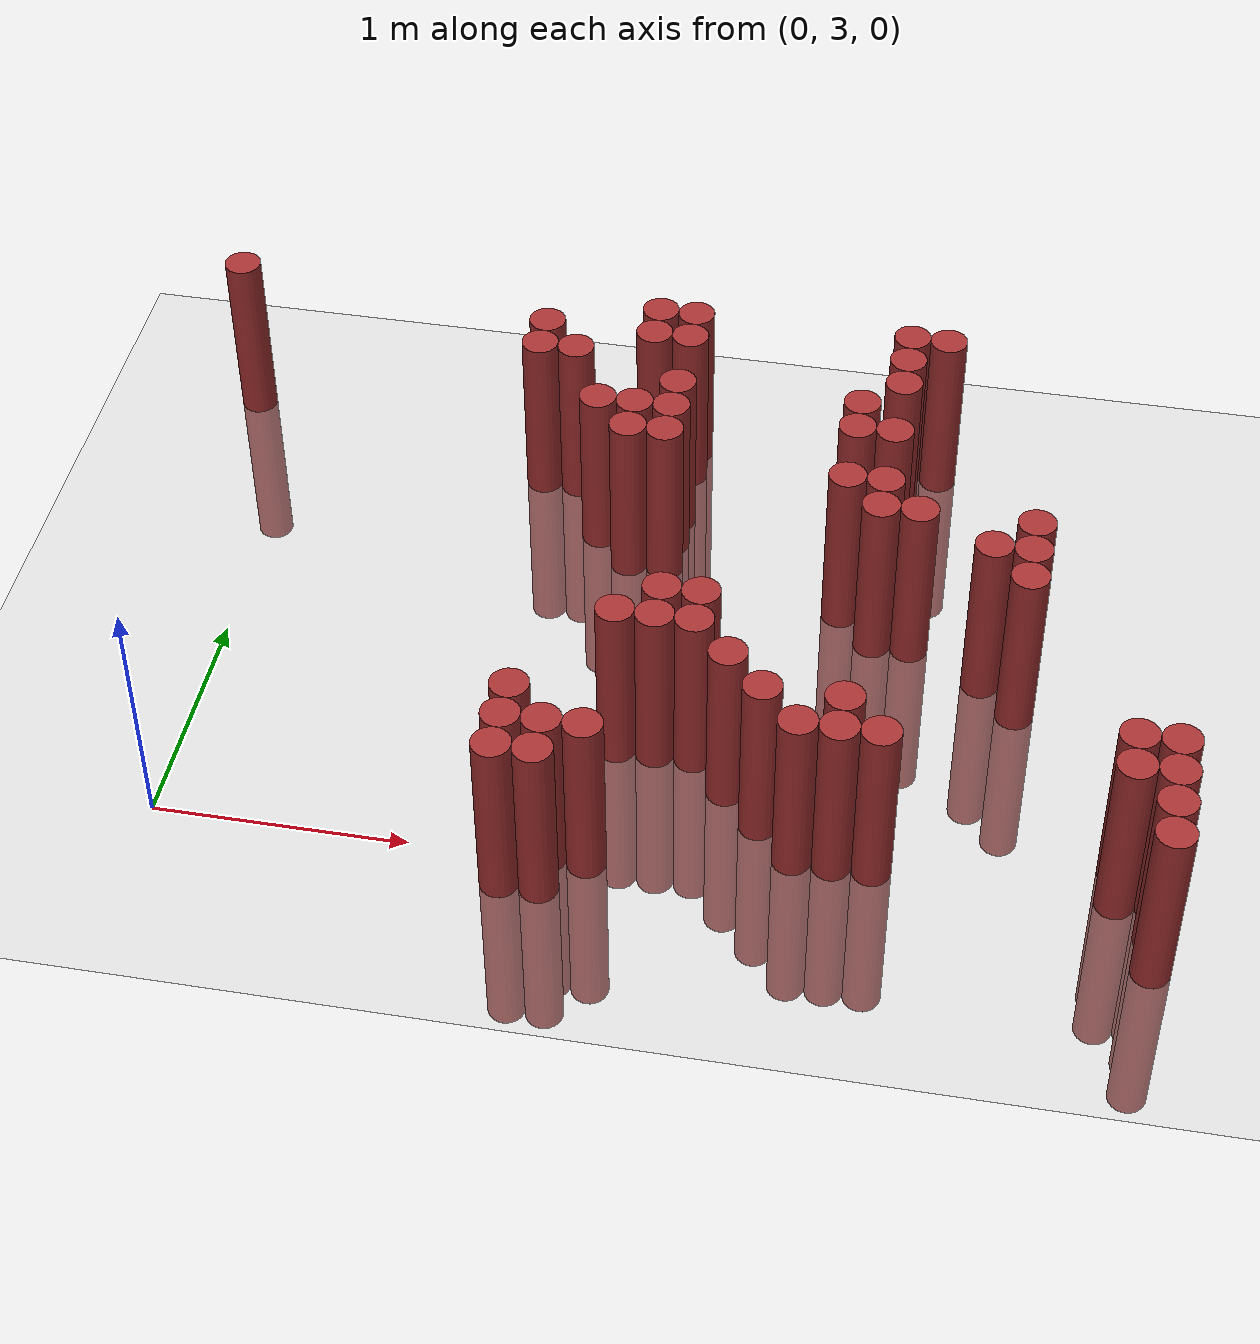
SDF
<sdf version="1.6">
 <world name="default">
  <model name="ground_plane">
   <static>1</static>
   <link name="link">
    <collision name="collision">
     <geometry><plane><normal>0 0 1</normal><size>100 100</size></plane></geometry>
     <surface><friction><ode><mu>100</mu><mu2>50</mu2></ode></friction></surface>
    </collision>
    <visual name="visual">
     <cast_shadows>0</cast_shadows>
     <geometry><plane><normal>0 0 1</normal><size>100 100</size></plane></geometry>
     <material>
      <script><uri>file://media/materials/scripts/gazebo.material</uri><name>Gazebo/Grey</name></script>
     </material>
    </visual>
   </link>
  </model>
  <model name="unit_cylinder_327">
   <static>1</static>
   <pose>-0.275000 5.425000 0.000000 0.000000 0.000000 0.000000</pose>
   <link name="link">
    <inertial>
     <mass>1</mass>
     <inertia><ixx>0.145833</ixx><ixy>0</ixy><ixz>0</ixz><iyy>0.145833</iyy><iyz>0</iyz><izz>0.125</izz></inertia>
    </inertial>
    <collision name="collision">
     <geometry><cylinder><radius>0.075000</radius><length>1.5</length></cylinder></geometry>
    </collision>
    <visual name="visual">
     <geometry><cylinder><radius>0.075000</radius><length>1.5</length></cylinder></geometry>
     <material>
      <ambient>0.648000 0.192000 0.192000 1</ambient>
      <diffuse>0.648000 0.192000 0.192000 1</diffuse>
     </material>
     <material>
      <script><name>Gazebo/Grey</name><uri>file://media/materials/scripts/gazebo.material</uri></script>
     </material>
    </visual>
   </link>
  </model>
  <model name="unit_cylinder_349">
   <static>1</static>
   <pose>1.075000 5.125000 0.000000 0.000000 0.000000 0.000000</pose>
   <link name="link">
    <inertial>
     <mass>1</mass>
     <inertia><ixx>0.145833</ixx><ixy>0</ixy><ixz>0</ixz><iyy>0.145833</iyy><iyz>0</iyz><izz>0.125</izz></inertia>
    </inertial>
    <collision name="collision">
     <geometry><cylinder><radius>0.075000</radius><length>1.5</length></cylinder></geometry>
    </collision>
    <visual name="visual">
     <geometry><cylinder><radius>0.075000</radius><length>1.5</length></cylinder></geometry>
     <material>
      <ambient>0.648000 0.192000 0.192000 1</ambient>
      <diffuse>0.648000 0.192000 0.192000 1</diffuse>
     </material>
     <material>
      <script><name>Gazebo/Grey</name><uri>file://media/materials/scripts/gazebo.material</uri></script>
     </material>
    </visual>
   </link>
  </model>
  <model name="unit_cylinder_350">
   <static>1</static>
   <pose>1.075000 5.275000 0.000000 0.000000 0.000000 0.000000</pose>
   <link name="link">
    <inertial>
     <mass>1</mass>
     <inertia><ixx>0.145833</ixx><ixy>0</ixy><ixz>0</ixz><iyy>0.145833</iyy><iyz>0</iyz><izz>0.125</izz></inertia>
    </inertial>
    <collision name="collision">
     <geometry><cylinder><radius>0.075000</radius><length>1.5</length></cylinder></geometry>
    </collision>
    <visual name="visual">
     <geometry><cylinder><radius>0.075000</radius><length>1.5</length></cylinder></geometry>
     <material>
      <ambient>0.648000 0.192000 0.192000 1</ambient>
      <diffuse>0.648000 0.192000 0.192000 1</diffuse>
     </material>
     <material>
      <script><name>Gazebo/Grey</name><uri>file://media/materials/scripts/gazebo.material</uri></script>
     </material>
    </visual>
   </link>
  </model>
  <model name="unit_cylinder_356">
   <static>1</static>
   <pose>1.225000 5.125000 0.000000 0.000000 0.000000 0.000000</pose>
   <link name="link">
    <inertial>
     <mass>1</mass>
     <inertia><ixx>0.145833</ixx><ixy>0</ixy><ixz>0</ixz><iyy>0.145833</iyy><iyz>0</iyz><izz>0.125</izz></inertia>
    </inertial>
    <collision name="collision">
     <geometry><cylinder><radius>0.075000</radius><length>1.5</length></cylinder></geometry>
    </collision>
    <visual name="visual">
     <geometry><cylinder><radius>0.075000</radius><length>1.5</length></cylinder></geometry>
     <material>
      <ambient>0.648000 0.192000 0.192000 1</ambient>
      <diffuse>0.648000 0.192000 0.192000 1</diffuse>
     </material>
     <material>
      <script><name>Gazebo/Grey</name><uri>file://media/materials/scripts/gazebo.material</uri></script>
     </material>
    </visual>
   </link>
  </model>
  <model name="unit_cylinder_359">
   <static>1</static>
   <pose>1.375000 2.875000 0.000000 0.000000 0.000000 0.000000</pose>
   <link name="link">
    <inertial>
     <mass>1</mass>
     <inertia><ixx>0.145833</ixx><ixy>0</ixy><ixz>0</ixz><iyy>0.145833</iyy><iyz>0</iyz><izz>0.125</izz></inertia>
    </inertial>
    <collision name="collision">
     <geometry><cylinder><radius>0.075000</radius><length>1.5</length></cylinder></geometry>
    </collision>
    <visual name="visual">
     <geometry><cylinder><radius>0.075000</radius><length>1.5</length></cylinder></geometry>
     <material>
      <ambient>0.648000 0.192000 0.192000 1</ambient>
      <diffuse>0.648000 0.192000 0.192000 1</diffuse>
     </material>
     <material>
      <script><name>Gazebo/Grey</name><uri>file://media/materials/scripts/gazebo.material</uri></script>
     </material>
    </visual>
   </link>
  </model>
  <model name="unit_cylinder_360">
   <static>1</static>
   <pose>1.375000 3.025000 0.000000 0.000000 0.000000 0.000000</pose>
   <link name="link">
    <inertial>
     <mass>1</mass>
     <inertia><ixx>0.145833</ixx><ixy>0</ixy><ixz>0</ixz><iyy>0.145833</iyy><iyz>0</iyz><izz>0.125</izz></inertia>
    </inertial>
    <collision name="collision">
     <geometry><cylinder><radius>0.075000</radius><length>1.5</length></cylinder></geometry>
    </collision>
    <visual name="visual">
     <geometry><cylinder><radius>0.075000</radius><length>1.5</length></cylinder></geometry>
     <material>
      <ambient>0.648000 0.192000 0.192000 1</ambient>
      <diffuse>0.648000 0.192000 0.192000 1</diffuse>
     </material>
     <material>
      <script><name>Gazebo/Grey</name><uri>file://media/materials/scripts/gazebo.material</uri></script>
     </material>
    </visual>
   </link>
  </model>
  <model name="unit_cylinder_361">
   <static>1</static>
   <pose>1.375000 3.175000 0.000000 0.000000 0.000000 0.000000</pose>
   <link name="link">
    <inertial>
     <mass>1</mass>
     <inertia><ixx>0.145833</ixx><ixy>0</ixy><ixz>0</ixz><iyy>0.145833</iyy><iyz>0</iyz><izz>0.125</izz></inertia>
    </inertial>
    <collision name="collision">
     <geometry><cylinder><radius>0.075000</radius><length>1.5</length></cylinder></geometry>
    </collision>
    <visual name="visual">
     <geometry><cylinder><radius>0.075000</radius><length>1.5</length></cylinder></geometry>
     <material>
      <ambient>0.648000 0.192000 0.192000 1</ambient>
      <diffuse>0.648000 0.192000 0.192000 1</diffuse>
     </material>
     <material>
      <script><name>Gazebo/Grey</name><uri>file://media/materials/scripts/gazebo.material</uri></script>
     </material>
    </visual>
   </link>
  </model>
  <model name="unit_cylinder_362">
   <static>1</static>
   <pose>1.375000 4.825000 0.000000 0.000000 0.000000 0.000000</pose>
   <link name="link">
    <inertial>
     <mass>1</mass>
     <inertia><ixx>0.145833</ixx><ixy>0</ixy><ixz>0</ixz><iyy>0.145833</iyy><iyz>0</iyz><izz>0.125</izz></inertia>
    </inertial>
    <collision name="collision">
     <geometry><cylinder><radius>0.075000</radius><length>1.5</length></cylinder></geometry>
    </collision>
    <visual name="visual">
     <geometry><cylinder><radius>0.075000</radius><length>1.5</length></cylinder></geometry>
     <material>
      <ambient>0.648000 0.192000 0.192000 1</ambient>
      <diffuse>0.648000 0.192000 0.192000 1</diffuse>
     </material>
     <material>
      <script><name>Gazebo/Grey</name><uri>file://media/materials/scripts/gazebo.material</uri></script>
     </material>
    </visual>
   </link>
  </model>
  <model name="unit_cylinder_363">
   <static>1</static>
   <pose>1.525000 2.875000 0.000000 0.000000 0.000000 0.000000</pose>
   <link name="link">
    <inertial>
     <mass>1</mass>
     <inertia><ixx>0.145833</ixx><ixy>0</ixy><ixz>0</ixz><iyy>0.145833</iyy><iyz>0</iyz><izz>0.125</izz></inertia>
    </inertial>
    <collision name="collision">
     <geometry><cylinder><radius>0.075000</radius><length>1.5</length></cylinder></geometry>
    </collision>
    <visual name="visual">
     <geometry><cylinder><radius>0.075000</radius><length>1.5</length></cylinder></geometry>
     <material>
      <ambient>0.648000 0.192000 0.192000 1</ambient>
      <diffuse>0.648000 0.192000 0.192000 1</diffuse>
     </material>
     <material>
      <script><name>Gazebo/Grey</name><uri>file://media/materials/scripts/gazebo.material</uri></script>
     </material>
    </visual>
   </link>
  </model>
  <model name="unit_cylinder_364">
   <static>1</static>
   <pose>1.525000 3.025000 0.000000 0.000000 0.000000 0.000000</pose>
   <link name="link">
    <inertial>
     <mass>1</mass>
     <inertia><ixx>0.145833</ixx><ixy>0</ixy><ixz>0</ixz><iyy>0.145833</iyy><iyz>0</iyz><izz>0.125</izz></inertia>
    </inertial>
    <collision name="collision">
     <geometry><cylinder><radius>0.075000</radius><length>1.5</length></cylinder></geometry>
    </collision>
    <visual name="visual">
     <geometry><cylinder><radius>0.075000</radius><length>1.5</length></cylinder></geometry>
     <material>
      <ambient>0.648000 0.192000 0.192000 1</ambient>
      <diffuse>0.648000 0.192000 0.192000 1</diffuse>
     </material>
     <material>
      <script><name>Gazebo/Grey</name><uri>file://media/materials/scripts/gazebo.material</uri></script>
     </material>
    </visual>
   </link>
  </model>
  <model name="unit_cylinder_365">
   <static>1</static>
   <pose>1.525000 4.675000 0.000000 0.000000 0.000000 0.000000</pose>
   <link name="link">
    <inertial>
     <mass>1</mass>
     <inertia><ixx>0.145833</ixx><ixy>0</ixy><ixz>0</ixz><iyy>0.145833</iyy><iyz>0</iyz><izz>0.125</izz></inertia>
    </inertial>
    <collision name="collision">
     <geometry><cylinder><radius>0.075000</radius><length>1.5</length></cylinder></geometry>
    </collision>
    <visual name="visual">
     <geometry><cylinder><radius>0.075000</radius><length>1.5</length></cylinder></geometry>
     <material>
      <ambient>0.648000 0.192000 0.192000 1</ambient>
      <diffuse>0.648000 0.192000 0.192000 1</diffuse>
     </material>
     <material>
      <script><name>Gazebo/Grey</name><uri>file://media/materials/scripts/gazebo.material</uri></script>
     </material>
    </visual>
   </link>
  </model>
  <model name="unit_cylinder_366">
   <static>1</static>
   <pose>1.525000 4.825000 0.000000 0.000000 0.000000 0.000000</pose>
   <link name="link">
    <inertial>
     <mass>1</mass>
     <inertia><ixx>0.145833</ixx><ixy>0</ixy><ixz>0</ixz><iyy>0.145833</iyy><iyz>0</iyz><izz>0.125</izz></inertia>
    </inertial>
    <collision name="collision">
     <geometry><cylinder><radius>0.075000</radius><length>1.5</length></cylinder></geometry>
    </collision>
    <visual name="visual">
     <geometry><cylinder><radius>0.075000</radius><length>1.5</length></cylinder></geometry>
     <material>
      <ambient>0.648000 0.192000 0.192000 1</ambient>
      <diffuse>0.648000 0.192000 0.192000 1</diffuse>
     </material>
     <material>
      <script><name>Gazebo/Grey</name><uri>file://media/materials/scripts/gazebo.material</uri></script>
     </material>
    </visual>
   </link>
  </model>
  <model name="unit_cylinder_367">
   <static>1</static>
   <pose>1.525000 5.275000 0.000000 0.000000 0.000000 0.000000</pose>
   <link name="link">
    <inertial>
     <mass>1</mass>
     <inertia><ixx>0.145833</ixx><ixy>0</ixy><ixz>0</ixz><iyy>0.145833</iyy><iyz>0</iyz><izz>0.125</izz></inertia>
    </inertial>
    <collision name="collision">
     <geometry><cylinder><radius>0.075000</radius><length>1.5</length></cylinder></geometry>
    </collision>
    <visual name="visual">
     <geometry><cylinder><radius>0.075000</radius><length>1.5</length></cylinder></geometry>
     <material>
      <ambient>0.648000 0.192000 0.192000 1</ambient>
      <diffuse>0.648000 0.192000 0.192000 1</diffuse>
     </material>
     <material>
      <script><name>Gazebo/Grey</name><uri>file://media/materials/scripts/gazebo.material</uri></script>
     </material>
    </visual>
   </link>
  </model>
  <model name="unit_cylinder_368">
   <static>1</static>
   <pose>1.525000 5.425000 0.000000 0.000000 0.000000 0.000000</pose>
   <link name="link">
    <inertial>
     <mass>1</mass>
     <inertia><ixx>0.145833</ixx><ixy>0</ixy><ixz>0</ixz><iyy>0.145833</iyy><iyz>0</iyz><izz>0.125</izz></inertia>
    </inertial>
    <collision name="collision">
     <geometry><cylinder><radius>0.075000</radius><length>1.5</length></cylinder></geometry>
    </collision>
    <visual name="visual">
     <geometry><cylinder><radius>0.075000</radius><length>1.5</length></cylinder></geometry>
     <material>
      <ambient>0.648000 0.192000 0.192000 1</ambient>
      <diffuse>0.648000 0.192000 0.192000 1</diffuse>
     </material>
     <material>
      <script><name>Gazebo/Grey</name><uri>file://media/materials/scripts/gazebo.material</uri></script>
     </material>
    </visual>
   </link>
  </model>
  <model name="unit_cylinder_369">
   <static>1</static>
   <pose>1.675000 3.025000 0.000000 0.000000 0.000000 0.000000</pose>
   <link name="link">
    <inertial>
     <mass>1</mass>
     <inertia><ixx>0.145833</ixx><ixy>0</ixy><ixz>0</ixz><iyy>0.145833</iyy><iyz>0</iyz><izz>0.125</izz></inertia>
    </inertial>
    <collision name="collision">
     <geometry><cylinder><radius>0.075000</radius><length>1.5</length></cylinder></geometry>
    </collision>
    <visual name="visual">
     <geometry><cylinder><radius>0.075000</radius><length>1.5</length></cylinder></geometry>
     <material>
      <ambient>0.648000 0.192000 0.192000 1</ambient>
      <diffuse>0.648000 0.192000 0.192000 1</diffuse>
     </material>
     <material>
      <script><name>Gazebo/Grey</name><uri>file://media/materials/scripts/gazebo.material</uri></script>
     </material>
    </visual>
   </link>
  </model>
  <model name="unit_cylinder_370">
   <static>1</static>
   <pose>1.675000 3.625000 0.000000 0.000000 0.000000 0.000000</pose>
   <link name="link">
    <inertial>
     <mass>1</mass>
     <inertia><ixx>0.145833</ixx><ixy>0</ixy><ixz>0</ixz><iyy>0.145833</iyy><iyz>0</iyz><izz>0.125</izz></inertia>
    </inertial>
    <collision name="collision">
     <geometry><cylinder><radius>0.075000</radius><length>1.5</length></cylinder></geometry>
    </collision>
    <visual name="visual">
     <geometry><cylinder><radius>0.075000</radius><length>1.5</length></cylinder></geometry>
     <material>
      <ambient>0.648000 0.192000 0.192000 1</ambient>
      <diffuse>0.648000 0.192000 0.192000 1</diffuse>
     </material>
     <material>
      <script><name>Gazebo/Grey</name><uri>file://media/materials/scripts/gazebo.material</uri></script>
     </material>
    </visual>
   </link>
  </model>
  <model name="unit_cylinder_371">
   <static>1</static>
   <pose>1.675000 4.675000 0.000000 0.000000 0.000000 0.000000</pose>
   <link name="link">
    <inertial>
     <mass>1</mass>
     <inertia><ixx>0.145833</ixx><ixy>0</ixy><ixz>0</ixz><iyy>0.145833</iyy><iyz>0</iyz><izz>0.125</izz></inertia>
    </inertial>
    <collision name="collision">
     <geometry><cylinder><radius>0.075000</radius><length>1.5</length></cylinder></geometry>
    </collision>
    <visual name="visual">
     <geometry><cylinder><radius>0.075000</radius><length>1.5</length></cylinder></geometry>
     <material>
      <ambient>0.648000 0.192000 0.192000 1</ambient>
      <diffuse>0.648000 0.192000 0.192000 1</diffuse>
     </material>
     <material>
      <script><name>Gazebo/Grey</name><uri>file://media/materials/scripts/gazebo.material</uri></script>
     </material>
    </visual>
   </link>
  </model>
  <model name="unit_cylinder_372">
   <static>1</static>
   <pose>1.675000 4.825000 0.000000 0.000000 0.000000 0.000000</pose>
   <link name="link">
    <inertial>
     <mass>1</mass>
     <inertia><ixx>0.145833</ixx><ixy>0</ixy><ixz>0</ixz><iyy>0.145833</iyy><iyz>0</iyz><izz>0.125</izz></inertia>
    </inertial>
    <collision name="collision">
     <geometry><cylinder><radius>0.075000</radius><length>1.5</length></cylinder></geometry>
    </collision>
    <visual name="visual">
     <geometry><cylinder><radius>0.075000</radius><length>1.5</length></cylinder></geometry>
     <material>
      <ambient>0.648000 0.192000 0.192000 1</ambient>
      <diffuse>0.648000 0.192000 0.192000 1</diffuse>
     </material>
     <material>
      <script><name>Gazebo/Grey</name><uri>file://media/materials/scripts/gazebo.material</uri></script>
     </material>
    </visual>
   </link>
  </model>
  <model name="unit_cylinder_373">
   <static>1</static>
   <pose>1.675000 4.975000 0.000000 0.000000 0.000000 0.000000</pose>
   <link name="link">
    <inertial>
     <mass>1</mass>
     <inertia><ixx>0.145833</ixx><ixy>0</ixy><ixz>0</ixz><iyy>0.145833</iyy><iyz>0</iyz><izz>0.125</izz></inertia>
    </inertial>
    <collision name="collision">
     <geometry><cylinder><radius>0.075000</radius><length>1.5</length></cylinder></geometry>
    </collision>
    <visual name="visual">
     <geometry><cylinder><radius>0.075000</radius><length>1.5</length></cylinder></geometry>
     <material>
      <ambient>0.648000 0.192000 0.192000 1</ambient>
      <diffuse>0.648000 0.192000 0.192000 1</diffuse>
     </material>
     <material>
      <script><name>Gazebo/Grey</name><uri>file://media/materials/scripts/gazebo.material</uri></script>
     </material>
    </visual>
   </link>
  </model>
  <model name="unit_cylinder_374">
   <static>1</static>
   <pose>1.675000 5.275000 0.000000 0.000000 0.000000 0.000000</pose>
   <link name="link">
    <inertial>
     <mass>1</mass>
     <inertia><ixx>0.145833</ixx><ixy>0</ixy><ixz>0</ixz><iyy>0.145833</iyy><iyz>0</iyz><izz>0.125</izz></inertia>
    </inertial>
    <collision name="collision">
     <geometry><cylinder><radius>0.075000</radius><length>1.5</length></cylinder></geometry>
    </collision>
    <visual name="visual">
     <geometry><cylinder><radius>0.075000</radius><length>1.5</length></cylinder></geometry>
     <material>
      <ambient>0.648000 0.192000 0.192000 1</ambient>
      <diffuse>0.648000 0.192000 0.192000 1</diffuse>
     </material>
     <material>
      <script><name>Gazebo/Grey</name><uri>file://media/materials/scripts/gazebo.material</uri></script>
     </material>
    </visual>
   </link>
  </model>
  <model name="unit_cylinder_375">
   <static>1</static>
   <pose>1.675000 5.425000 0.000000 0.000000 0.000000 0.000000</pose>
   <link name="link">
    <inertial>
     <mass>1</mass>
     <inertia><ixx>0.145833</ixx><ixy>0</ixy><ixz>0</ixz><iyy>0.145833</iyy><iyz>0</iyz><izz>0.125</izz></inertia>
    </inertial>
    <collision name="collision">
     <geometry><cylinder><radius>0.075000</radius><length>1.5</length></cylinder></geometry>
    </collision>
    <visual name="visual">
     <geometry><cylinder><radius>0.075000</radius><length>1.5</length></cylinder></geometry>
     <material>
      <ambient>0.648000 0.192000 0.192000 1</ambient>
      <diffuse>0.648000 0.192000 0.192000 1</diffuse>
     </material>
     <material>
      <script><name>Gazebo/Grey</name><uri>file://media/materials/scripts/gazebo.material</uri></script>
     </material>
    </visual>
   </link>
  </model>
  <model name="unit_cylinder_378">
   <static>1</static>
   <pose>1.825000 3.625000 0.000000 0.000000 0.000000 0.000000</pose>
   <link name="link">
    <inertial>
     <mass>1</mass>
     <inertia><ixx>0.145833</ixx><ixy>0</ixy><ixz>0</ixz><iyy>0.145833</iyy><iyz>0</iyz><izz>0.125</izz></inertia>
    </inertial>
    <collision name="collision">
     <geometry><cylinder><radius>0.075000</radius><length>1.5</length></cylinder></geometry>
    </collision>
    <visual name="visual">
     <geometry><cylinder><radius>0.075000</radius><length>1.5</length></cylinder></geometry>
     <material>
      <ambient>0.648000 0.192000 0.192000 1</ambient>
      <diffuse>0.648000 0.192000 0.192000 1</diffuse>
     </material>
     <material>
      <script><name>Gazebo/Grey</name><uri>file://media/materials/scripts/gazebo.material</uri></script>
     </material>
    </visual>
   </link>
  </model>
  <model name="unit_cylinder_379">
   <static>1</static>
   <pose>1.825000 3.775000 0.000000 0.000000 0.000000 0.000000</pose>
   <link name="link">
    <inertial>
     <mass>1</mass>
     <inertia><ixx>0.145833</ixx><ixy>0</ixy><ixz>0</ixz><iyy>0.145833</iyy><iyz>0</iyz><izz>0.125</izz></inertia>
    </inertial>
    <collision name="collision">
     <geometry><cylinder><radius>0.075000</radius><length>1.5</length></cylinder></geometry>
    </collision>
    <visual name="visual">
     <geometry><cylinder><radius>0.075000</radius><length>1.5</length></cylinder></geometry>
     <material>
      <ambient>0.648000 0.192000 0.192000 1</ambient>
      <diffuse>0.648000 0.192000 0.192000 1</diffuse>
     </material>
     <material>
      <script><name>Gazebo/Grey</name><uri>file://media/materials/scripts/gazebo.material</uri></script>
     </material>
    </visual>
   </link>
  </model>
  <model name="unit_cylinder_383">
   <static>1</static>
   <pose>1.975000 3.625000 0.000000 0.000000 0.000000 0.000000</pose>
   <link name="link">
    <inertial>
     <mass>1</mass>
     <inertia><ixx>0.145833</ixx><ixy>0</ixy><ixz>0</ixz><iyy>0.145833</iyy><iyz>0</iyz><izz>0.125</izz></inertia>
    </inertial>
    <collision name="collision">
     <geometry><cylinder><radius>0.075000</radius><length>1.5</length></cylinder></geometry>
    </collision>
    <visual name="visual">
     <geometry><cylinder><radius>0.075000</radius><length>1.5</length></cylinder></geometry>
     <material>
      <ambient>0.648000 0.192000 0.192000 1</ambient>
      <diffuse>0.648000 0.192000 0.192000 1</diffuse>
     </material>
     <material>
      <script><name>Gazebo/Grey</name><uri>file://media/materials/scripts/gazebo.material</uri></script>
     </material>
    </visual>
   </link>
  </model>
  <model name="unit_cylinder_384">
   <static>1</static>
   <pose>1.975000 3.775000 0.000000 0.000000 0.000000 0.000000</pose>
   <link name="link">
    <inertial>
     <mass>1</mass>
     <inertia><ixx>0.145833</ixx><ixy>0</ixy><ixz>0</ixz><iyy>0.145833</iyy><iyz>0</iyz><izz>0.125</izz></inertia>
    </inertial>
    <collision name="collision">
     <geometry><cylinder><radius>0.075000</radius><length>1.5</length></cylinder></geometry>
    </collision>
    <visual name="visual">
     <geometry><cylinder><radius>0.075000</radius><length>1.5</length></cylinder></geometry>
     <material>
      <ambient>0.648000 0.192000 0.192000 1</ambient>
      <diffuse>0.648000 0.192000 0.192000 1</diffuse>
     </material>
     <material>
      <script><name>Gazebo/Grey</name><uri>file://media/materials/scripts/gazebo.material</uri></script>
     </material>
    </visual>
   </link>
  </model>
  <model name="unit_cylinder_387">
   <static>1</static>
   <pose>2.125000 3.475000 0.000000 0.000000 0.000000 0.000000</pose>
   <link name="link">
    <inertial>
     <mass>1</mass>
     <inertia><ixx>0.145833</ixx><ixy>0</ixy><ixz>0</ixz><iyy>0.145833</iyy><iyz>0</iyz><izz>0.125</izz></inertia>
    </inertial>
    <collision name="collision">
     <geometry><cylinder><radius>0.075000</radius><length>1.5</length></cylinder></geometry>
    </collision>
    <visual name="visual">
     <geometry><cylinder><radius>0.075000</radius><length>1.5</length></cylinder></geometry>
     <material>
      <ambient>0.648000 0.192000 0.192000 1</ambient>
      <diffuse>0.648000 0.192000 0.192000 1</diffuse>
     </material>
     <material>
      <script><name>Gazebo/Grey</name><uri>file://media/materials/scripts/gazebo.material</uri></script>
     </material>
    </visual>
   </link>
  </model>
  <model name="unit_cylinder_390">
   <static>1</static>
   <pose>2.275000 3.325000 0.000000 0.000000 0.000000 0.000000</pose>
   <link name="link">
    <inertial>
     <mass>1</mass>
     <inertia><ixx>0.145833</ixx><ixy>0</ixy><ixz>0</ixz><iyy>0.145833</iyy><iyz>0</iyz><izz>0.125</izz></inertia>
    </inertial>
    <collision name="collision">
     <geometry><cylinder><radius>0.075000</radius><length>1.5</length></cylinder></geometry>
    </collision>
    <visual name="visual">
     <geometry><cylinder><radius>0.075000</radius><length>1.5</length></cylinder></geometry>
     <material>
      <ambient>0.648000 0.192000 0.192000 1</ambient>
      <diffuse>0.648000 0.192000 0.192000 1</diffuse>
     </material>
     <material>
      <script><name>Gazebo/Grey</name><uri>file://media/materials/scripts/gazebo.material</uri></script>
     </material>
    </visual>
   </link>
  </model>
  <model name="unit_cylinder_391">
   <static>1</static>
   <pose>2.425000 3.175000 0.000000 0.000000 0.000000 0.000000</pose>
   <link name="link">
    <inertial>
     <mass>1</mass>
     <inertia><ixx>0.145833</ixx><ixy>0</ixy><ixz>0</ixz><iyy>0.145833</iyy><iyz>0</iyz><izz>0.125</izz></inertia>
    </inertial>
    <collision name="collision">
     <geometry><cylinder><radius>0.075000</radius><length>1.5</length></cylinder></geometry>
    </collision>
    <visual name="visual">
     <geometry><cylinder><radius>0.075000</radius><length>1.5</length></cylinder></geometry>
     <material>
      <ambient>0.648000 0.192000 0.192000 1</ambient>
      <diffuse>0.648000 0.192000 0.192000 1</diffuse>
     </material>
     <material>
      <script><name>Gazebo/Grey</name><uri>file://media/materials/scripts/gazebo.material</uri></script>
     </material>
    </visual>
   </link>
  </model>
  <model name="unit_cylinder_392">
   <static>1</static>
   <pose>2.425000 4.525000 0.000000 0.000000 0.000000 0.000000</pose>
   <link name="link">
    <inertial>
     <mass>1</mass>
     <inertia><ixx>0.145833</ixx><ixy>0</ixy><ixz>0</ixz><iyy>0.145833</iyy><iyz>0</iyz><izz>0.125</izz></inertia>
    </inertial>
    <collision name="collision">
     <geometry><cylinder><radius>0.075000</radius><length>1.5</length></cylinder></geometry>
    </collision>
    <visual name="visual">
     <geometry><cylinder><radius>0.075000</radius><length>1.5</length></cylinder></geometry>
     <material>
      <ambient>0.648000 0.192000 0.192000 1</ambient>
      <diffuse>0.648000 0.192000 0.192000 1</diffuse>
     </material>
     <material>
      <script><name>Gazebo/Grey</name><uri>file://media/materials/scripts/gazebo.material</uri></script>
     </material>
    </visual>
   </link>
  </model>
  <model name="unit_cylinder_393">
   <static>1</static>
   <pose>2.425000 4.825000 0.000000 0.000000 0.000000 0.000000</pose>
   <link name="link">
    <inertial>
     <mass>1</mass>
     <inertia><ixx>0.145833</ixx><ixy>0</ixy><ixz>0</ixz><iyy>0.145833</iyy><iyz>0</iyz><izz>0.125</izz></inertia>
    </inertial>
    <collision name="collision">
     <geometry><cylinder><radius>0.075000</radius><length>1.5</length></cylinder></geometry>
    </collision>
    <visual name="visual">
     <geometry><cylinder><radius>0.075000</radius><length>1.5</length></cylinder></geometry>
     <material>
      <ambient>0.648000 0.192000 0.192000 1</ambient>
      <diffuse>0.648000 0.192000 0.192000 1</diffuse>
     </material>
     <material>
      <script><name>Gazebo/Grey</name><uri>file://media/materials/scripts/gazebo.material</uri></script>
     </material>
    </visual>
   </link>
  </model>
  <model name="unit_cylinder_394">
   <static>1</static>
   <pose>2.425000 4.975000 0.000000 0.000000 0.000000 0.000000</pose>
   <link name="link">
    <inertial>
     <mass>1</mass>
     <inertia><ixx>0.145833</ixx><ixy>0</ixy><ixz>0</ixz><iyy>0.145833</iyy><iyz>0</iyz><izz>0.125</izz></inertia>
    </inertial>
    <collision name="collision">
     <geometry><cylinder><radius>0.075000</radius><length>1.5</length></cylinder></geometry>
    </collision>
    <visual name="visual">
     <geometry><cylinder><radius>0.075000</radius><length>1.5</length></cylinder></geometry>
     <material>
      <ambient>0.648000 0.192000 0.192000 1</ambient>
      <diffuse>0.648000 0.192000 0.192000 1</diffuse>
     </material>
     <material>
      <script><name>Gazebo/Grey</name><uri>file://media/materials/scripts/gazebo.material</uri></script>
     </material>
    </visual>
   </link>
  </model>
  <model name="unit_cylinder_395">
   <static>1</static>
   <pose>2.575000 3.175000 0.000000 0.000000 0.000000 0.000000</pose>
   <link name="link">
    <inertial>
     <mass>1</mass>
     <inertia><ixx>0.145833</ixx><ixy>0</ixy><ixz>0</ixz><iyy>0.145833</iyy><iyz>0</iyz><izz>0.125</izz></inertia>
    </inertial>
    <collision name="collision">
     <geometry><cylinder><radius>0.075000</radius><length>1.5</length></cylinder></geometry>
    </collision>
    <visual name="visual">
     <geometry><cylinder><radius>0.075000</radius><length>1.5</length></cylinder></geometry>
     <material>
      <ambient>0.648000 0.192000 0.192000 1</ambient>
      <diffuse>0.648000 0.192000 0.192000 1</diffuse>
     </material>
     <material>
      <script><name>Gazebo/Grey</name><uri>file://media/materials/scripts/gazebo.material</uri></script>
     </material>
    </visual>
   </link>
  </model>
  <model name="unit_cylinder_396">
   <static>1</static>
   <pose>2.575000 3.325000 0.000000 0.000000 0.000000 0.000000</pose>
   <link name="link">
    <inertial>
     <mass>1</mass>
     <inertia><ixx>0.145833</ixx><ixy>0</ixy><ixz>0</ixz><iyy>0.145833</iyy><iyz>0</iyz><izz>0.125</izz></inertia>
    </inertial>
    <collision name="collision">
     <geometry><cylinder><radius>0.075000</radius><length>1.5</length></cylinder></geometry>
    </collision>
    <visual name="visual">
     <geometry><cylinder><radius>0.075000</radius><length>1.5</length></cylinder></geometry>
     <material>
      <ambient>0.648000 0.192000 0.192000 1</ambient>
      <diffuse>0.648000 0.192000 0.192000 1</diffuse>
     </material>
     <material>
      <script><name>Gazebo/Grey</name><uri>file://media/materials/scripts/gazebo.material</uri></script>
     </material>
    </visual>
   </link>
  </model>
  <model name="unit_cylinder_397">
   <static>1</static>
   <pose>2.575000 4.375000 0.000000 0.000000 0.000000 0.000000</pose>
   <link name="link">
    <inertial>
     <mass>1</mass>
     <inertia><ixx>0.145833</ixx><ixy>0</ixy><ixz>0</ixz><iyy>0.145833</iyy><iyz>0</iyz><izz>0.125</izz></inertia>
    </inertial>
    <collision name="collision">
     <geometry><cylinder><radius>0.075000</radius><length>1.5</length></cylinder></geometry>
    </collision>
    <visual name="visual">
     <geometry><cylinder><radius>0.075000</radius><length>1.5</length></cylinder></geometry>
     <material>
      <ambient>0.648000 0.192000 0.192000 1</ambient>
      <diffuse>0.648000 0.192000 0.192000 1</diffuse>
     </material>
     <material>
      <script><name>Gazebo/Grey</name><uri>file://media/materials/scripts/gazebo.material</uri></script>
     </material>
    </visual>
   </link>
  </model>
  <model name="unit_cylinder_398">
   <static>1</static>
   <pose>2.575000 4.525000 0.000000 0.000000 0.000000 0.000000</pose>
   <link name="link">
    <inertial>
     <mass>1</mass>
     <inertia><ixx>0.145833</ixx><ixy>0</ixy><ixz>0</ixz><iyy>0.145833</iyy><iyz>0</iyz><izz>0.125</izz></inertia>
    </inertial>
    <collision name="collision">
     <geometry><cylinder><radius>0.075000</radius><length>1.5</length></cylinder></geometry>
    </collision>
    <visual name="visual">
     <geometry><cylinder><radius>0.075000</radius><length>1.5</length></cylinder></geometry>
     <material>
      <ambient>0.648000 0.192000 0.192000 1</ambient>
      <diffuse>0.648000 0.192000 0.192000 1</diffuse>
     </material>
     <material>
      <script><name>Gazebo/Grey</name><uri>file://media/materials/scripts/gazebo.material</uri></script>
     </material>
    </visual>
   </link>
  </model>
  <model name="unit_cylinder_399">
   <static>1</static>
   <pose>2.575000 4.825000 0.000000 0.000000 0.000000 0.000000</pose>
   <link name="link">
    <inertial>
     <mass>1</mass>
     <inertia><ixx>0.145833</ixx><ixy>0</ixy><ixz>0</ixz><iyy>0.145833</iyy><iyz>0</iyz><izz>0.125</izz></inertia>
    </inertial>
    <collision name="collision">
     <geometry><cylinder><radius>0.075000</radius><length>1.5</length></cylinder></geometry>
    </collision>
    <visual name="visual">
     <geometry><cylinder><radius>0.075000</radius><length>1.5</length></cylinder></geometry>
     <material>
      <ambient>0.648000 0.192000 0.192000 1</ambient>
      <diffuse>0.648000 0.192000 0.192000 1</diffuse>
     </material>
     <material>
      <script><name>Gazebo/Grey</name><uri>file://media/materials/scripts/gazebo.material</uri></script>
     </material>
    </visual>
   </link>
  </model>
  <model name="unit_cylinder_400">
   <static>1</static>
   <pose>2.575000 5.125000 0.000000 0.000000 0.000000 0.000000</pose>
   <link name="link">
    <inertial>
     <mass>1</mass>
     <inertia><ixx>0.145833</ixx><ixy>0</ixy><ixz>0</ixz><iyy>0.145833</iyy><iyz>0</iyz><izz>0.125</izz></inertia>
    </inertial>
    <collision name="collision">
     <geometry><cylinder><radius>0.075000</radius><length>1.5</length></cylinder></geometry>
    </collision>
    <visual name="visual">
     <geometry><cylinder><radius>0.075000</radius><length>1.5</length></cylinder></geometry>
     <material>
      <ambient>0.648000 0.192000 0.192000 1</ambient>
      <diffuse>0.648000 0.192000 0.192000 1</diffuse>
     </material>
     <material>
      <script><name>Gazebo/Grey</name><uri>file://media/materials/scripts/gazebo.material</uri></script>
     </material>
    </visual>
   </link>
  </model>
  <model name="unit_cylinder_401">
   <static>1</static>
   <pose>2.575000 5.275000 0.000000 0.000000 0.000000 0.000000</pose>
   <link name="link">
    <inertial>
     <mass>1</mass>
     <inertia><ixx>0.145833</ixx><ixy>0</ixy><ixz>0</ixz><iyy>0.145833</iyy><iyz>0</iyz><izz>0.125</izz></inertia>
    </inertial>
    <collision name="collision">
     <geometry><cylinder><radius>0.075000</radius><length>1.5</length></cylinder></geometry>
    </collision>
    <visual name="visual">
     <geometry><cylinder><radius>0.075000</radius><length>1.5</length></cylinder></geometry>
     <material>
      <ambient>0.648000 0.192000 0.192000 1</ambient>
      <diffuse>0.648000 0.192000 0.192000 1</diffuse>
     </material>
     <material>
      <script><name>Gazebo/Grey</name><uri>file://media/materials/scripts/gazebo.material</uri></script>
     </material>
    </visual>
   </link>
  </model>
  <model name="unit_cylinder_402">
   <static>1</static>
   <pose>2.575000 5.425000 0.000000 0.000000 0.000000 0.000000</pose>
   <link name="link">
    <inertial>
     <mass>1</mass>
     <inertia><ixx>0.145833</ixx><ixy>0</ixy><ixz>0</ixz><iyy>0.145833</iyy><iyz>0</iyz><izz>0.125</izz></inertia>
    </inertial>
    <collision name="collision">
     <geometry><cylinder><radius>0.075000</radius><length>1.5</length></cylinder></geometry>
    </collision>
    <visual name="visual">
     <geometry><cylinder><radius>0.075000</radius><length>1.5</length></cylinder></geometry>
     <material>
      <ambient>0.648000 0.192000 0.192000 1</ambient>
      <diffuse>0.648000 0.192000 0.192000 1</diffuse>
     </material>
     <material>
      <script><name>Gazebo/Grey</name><uri>file://media/materials/scripts/gazebo.material</uri></script>
     </material>
    </visual>
   </link>
  </model>
  <model name="unit_cylinder_408">
   <static>1</static>
   <pose>2.725000 3.175000 0.000000 0.000000 0.000000 0.000000</pose>
   <link name="link">
    <inertial>
     <mass>1</mass>
     <inertia><ixx>0.145833</ixx><ixy>0</ixy><ixz>0</ixz><iyy>0.145833</iyy><iyz>0</iyz><izz>0.125</izz></inertia>
    </inertial>
    <collision name="collision">
     <geometry><cylinder><radius>0.075000</radius><length>1.5</length></cylinder></geometry>
    </collision>
    <visual name="visual">
     <geometry><cylinder><radius>0.075000</radius><length>1.5</length></cylinder></geometry>
     <material>
      <ambient>0.648000 0.192000 0.192000 1</ambient>
      <diffuse>0.648000 0.192000 0.192000 1</diffuse>
     </material>
     <material>
      <script><name>Gazebo/Grey</name><uri>file://media/materials/scripts/gazebo.material</uri></script>
     </material>
    </visual>
   </link>
  </model>
  <model name="unit_cylinder_409">
   <static>1</static>
   <pose>2.725000 4.375000 0.000000 0.000000 0.000000 0.000000</pose>
   <link name="link">
    <inertial>
     <mass>1</mass>
     <inertia><ixx>0.145833</ixx><ixy>0</ixy><ixz>0</ixz><iyy>0.145833</iyy><iyz>0</iyz><izz>0.125</izz></inertia>
    </inertial>
    <collision name="collision">
     <geometry><cylinder><radius>0.075000</radius><length>1.5</length></cylinder></geometry>
    </collision>
    <visual name="visual">
     <geometry><cylinder><radius>0.075000</radius><length>1.5</length></cylinder></geometry>
     <material>
      <ambient>0.648000 0.192000 0.192000 1</ambient>
      <diffuse>0.648000 0.192000 0.192000 1</diffuse>
     </material>
     <material>
      <script><name>Gazebo/Grey</name><uri>file://media/materials/scripts/gazebo.material</uri></script>
     </material>
    </visual>
   </link>
  </model>
  <model name="unit_cylinder_410">
   <static>1</static>
   <pose>2.725000 5.425000 0.000000 0.000000 0.000000 0.000000</pose>
   <link name="link">
    <inertial>
     <mass>1</mass>
     <inertia><ixx>0.145833</ixx><ixy>0</ixy><ixz>0</ixz><iyy>0.145833</iyy><iyz>0</iyz><izz>0.125</izz></inertia>
    </inertial>
    <collision name="collision">
     <geometry><cylinder><radius>0.075000</radius><length>1.5</length></cylinder></geometry>
    </collision>
    <visual name="visual">
     <geometry><cylinder><radius>0.075000</radius><length>1.5</length></cylinder></geometry>
     <material>
      <ambient>0.648000 0.192000 0.192000 1</ambient>
      <diffuse>0.648000 0.192000 0.192000 1</diffuse>
     </material>
     <material>
      <script><name>Gazebo/Grey</name><uri>file://media/materials/scripts/gazebo.material</uri></script>
     </material>
    </visual>
   </link>
  </model>
  <model name="unit_cylinder_419">
   <static>1</static>
   <pose>3.025000 4.225000 0.000000 0.000000 0.000000 0.000000</pose>
   <link name="link">
    <inertial>
     <mass>1</mass>
     <inertia><ixx>0.145833</ixx><ixy>0</ixy><ixz>0</ixz><iyy>0.145833</iyy><iyz>0</iyz><izz>0.125</izz></inertia>
    </inertial>
    <collision name="collision">
     <geometry><cylinder><radius>0.075000</radius><length>1.5</length></cylinder></geometry>
    </collision>
    <visual name="visual">
     <geometry><cylinder><radius>0.075000</radius><length>1.5</length></cylinder></geometry>
     <material>
      <ambient>0.648000 0.192000 0.192000 1</ambient>
      <diffuse>0.648000 0.192000 0.192000 1</diffuse>
     </material>
     <material>
      <script><name>Gazebo/Grey</name><uri>file://media/materials/scripts/gazebo.material</uri></script>
     </material>
    </visual>
   </link>
  </model>
  <model name="unit_cylinder_422">
   <static>1</static>
   <pose>3.175000 4.075000 0.000000 0.000000 0.000000 0.000000</pose>
   <link name="link">
    <inertial>
     <mass>1</mass>
     <inertia><ixx>0.145833</ixx><ixy>0</ixy><ixz>0</ixz><iyy>0.145833</iyy><iyz>0</iyz><izz>0.125</izz></inertia>
    </inertial>
    <collision name="collision">
     <geometry><cylinder><radius>0.075000</radius><length>1.5</length></cylinder></geometry>
    </collision>
    <visual name="visual">
     <geometry><cylinder><radius>0.075000</radius><length>1.5</length></cylinder></geometry>
     <material>
      <ambient>0.648000 0.192000 0.192000 1</ambient>
      <diffuse>0.648000 0.192000 0.192000 1</diffuse>
     </material>
     <material>
      <script><name>Gazebo/Grey</name><uri>file://media/materials/scripts/gazebo.material</uri></script>
     </material>
    </visual>
   </link>
  </model>
  <model name="unit_cylinder_423">
   <static>1</static>
   <pose>3.175000 4.225000 0.000000 0.000000 0.000000 0.000000</pose>
   <link name="link">
    <inertial>
     <mass>1</mass>
     <inertia><ixx>0.145833</ixx><ixy>0</ixy><ixz>0</ixz><iyy>0.145833</iyy><iyz>0</iyz><izz>0.125</izz></inertia>
    </inertial>
    <collision name="collision">
     <geometry><cylinder><radius>0.075000</radius><length>1.5</length></cylinder></geometry>
    </collision>
    <visual name="visual">
     <geometry><cylinder><radius>0.075000</radius><length>1.5</length></cylinder></geometry>
     <material>
      <ambient>0.648000 0.192000 0.192000 1</ambient>
      <diffuse>0.648000 0.192000 0.192000 1</diffuse>
     </material>
     <material>
      <script><name>Gazebo/Grey</name><uri>file://media/materials/scripts/gazebo.material</uri></script>
     </material>
    </visual>
   </link>
  </model>
  <model name="unit_cylinder_424">
   <static>1</static>
   <pose>3.175000 4.375000 0.000000 0.000000 0.000000 0.000000</pose>
   <link name="link">
    <inertial>
     <mass>1</mass>
     <inertia><ixx>0.145833</ixx><ixy>0</ixy><ixz>0</ixz><iyy>0.145833</iyy><iyz>0</iyz><izz>0.125</izz></inertia>
    </inertial>
    <collision name="collision">
     <geometry><cylinder><radius>0.075000</radius><length>1.5</length></cylinder></geometry>
    </collision>
    <visual name="visual">
     <geometry><cylinder><radius>0.075000</radius><length>1.5</length></cylinder></geometry>
     <material>
      <ambient>0.648000 0.192000 0.192000 1</ambient>
      <diffuse>0.648000 0.192000 0.192000 1</diffuse>
     </material>
     <material>
      <script><name>Gazebo/Grey</name><uri>file://media/materials/scripts/gazebo.material</uri></script>
     </material>
    </visual>
   </link>
  </model>
  <model name="unit_cylinder_446">
   <static>1</static>
   <pose>3.625000 3.175000 0.000000 0.000000 0.000000 0.000000</pose>
   <link name="link">
    <inertial>
     <mass>1</mass>
     <inertia><ixx>0.145833</ixx><ixy>0</ixy><ixz>0</ixz><iyy>0.145833</iyy><iyz>0</iyz><izz>0.125</izz></inertia>
    </inertial>
    <collision name="collision">
     <geometry><cylinder><radius>0.075000</radius><length>1.5</length></cylinder></geometry>
    </collision>
    <visual name="visual">
     <geometry><cylinder><radius>0.075000</radius><length>1.5</length></cylinder></geometry>
     <material>
      <ambient>0.648000 0.192000 0.192000 1</ambient>
      <diffuse>0.648000 0.192000 0.192000 1</diffuse>
     </material>
     <material>
      <script><name>Gazebo/Grey</name><uri>file://media/materials/scripts/gazebo.material</uri></script>
     </material>
    </visual>
   </link>
  </model>
  <model name="unit_cylinder_447">
   <static>1</static>
   <pose>3.625000 3.325000 0.000000 0.000000 0.000000 0.000000</pose>
   <link name="link">
    <inertial>
     <mass>1</mass>
     <inertia><ixx>0.145833</ixx><ixy>0</ixy><ixz>0</ixz><iyy>0.145833</iyy><iyz>0</iyz><izz>0.125</izz></inertia>
    </inertial>
    <collision name="collision">
     <geometry><cylinder><radius>0.075000</radius><length>1.5</length></cylinder></geometry>
    </collision>
    <visual name="visual">
     <geometry><cylinder><radius>0.075000</radius><length>1.5</length></cylinder></geometry>
     <material>
      <ambient>0.648000 0.192000 0.192000 1</ambient>
      <diffuse>0.648000 0.192000 0.192000 1</diffuse>
     </material>
     <material>
      <script><name>Gazebo/Grey</name><uri>file://media/materials/scripts/gazebo.material</uri></script>
     </material>
    </visual>
   </link>
  </model>
  <model name="unit_cylinder_457">
   <static>1</static>
   <pose>3.775000 2.875000 0.000000 0.000000 0.000000 0.000000</pose>
   <link name="link">
    <inertial>
     <mass>1</mass>
     <inertia><ixx>0.145833</ixx><ixy>0</ixy><ixz>0</ixz><iyy>0.145833</iyy><iyz>0</iyz><izz>0.125</izz></inertia>
    </inertial>
    <collision name="collision">
     <geometry><cylinder><radius>0.075000</radius><length>1.5</length></cylinder></geometry>
    </collision>
    <visual name="visual">
     <geometry><cylinder><radius>0.075000</radius><length>1.5</length></cylinder></geometry>
     <material>
      <ambient>0.648000 0.192000 0.192000 1</ambient>
      <diffuse>0.648000 0.192000 0.192000 1</diffuse>
     </material>
     <material>
      <script><name>Gazebo/Grey</name><uri>file://media/materials/scripts/gazebo.material</uri></script>
     </material>
    </visual>
   </link>
  </model>
  <model name="unit_cylinder_458">
   <static>1</static>
   <pose>3.775000 3.025000 0.000000 0.000000 0.000000 0.000000</pose>
   <link name="link">
    <inertial>
     <mass>1</mass>
     <inertia><ixx>0.145833</ixx><ixy>0</ixy><ixz>0</ixz><iyy>0.145833</iyy><iyz>0</iyz><izz>0.125</izz></inertia>
    </inertial>
    <collision name="collision">
     <geometry><cylinder><radius>0.075000</radius><length>1.5</length></cylinder></geometry>
    </collision>
    <visual name="visual">
     <geometry><cylinder><radius>0.075000</radius><length>1.5</length></cylinder></geometry>
     <material>
      <ambient>0.648000 0.192000 0.192000 1</ambient>
      <diffuse>0.648000 0.192000 0.192000 1</diffuse>
     </material>
     <material>
      <script><name>Gazebo/Grey</name><uri>file://media/materials/scripts/gazebo.material</uri></script>
     </material>
    </visual>
   </link>
  </model>
  <model name="unit_cylinder_459">
   <static>1</static>
   <pose>3.775000 3.175000 0.000000 0.000000 0.000000 0.000000</pose>
   <link name="link">
    <inertial>
     <mass>1</mass>
     <inertia><ixx>0.145833</ixx><ixy>0</ixy><ixz>0</ixz><iyy>0.145833</iyy><iyz>0</iyz><izz>0.125</izz></inertia>
    </inertial>
    <collision name="collision">
     <geometry><cylinder><radius>0.075000</radius><length>1.5</length></cylinder></geometry>
    </collision>
    <visual name="visual">
     <geometry><cylinder><radius>0.075000</radius><length>1.5</length></cylinder></geometry>
     <material>
      <ambient>0.648000 0.192000 0.192000 1</ambient>
      <diffuse>0.648000 0.192000 0.192000 1</diffuse>
     </material>
     <material>
      <script><name>Gazebo/Grey</name><uri>file://media/materials/scripts/gazebo.material</uri></script>
     </material>
    </visual>
   </link>
  </model>
  <model name="unit_cylinder_460">
   <static>1</static>
   <pose>3.775000 3.325000 0.000000 0.000000 0.000000 0.000000</pose>
   <link name="link">
    <inertial>
     <mass>1</mass>
     <inertia><ixx>0.145833</ixx><ixy>0</ixy><ixz>0</ixz><iyy>0.145833</iyy><iyz>0</iyz><izz>0.125</izz></inertia>
    </inertial>
    <collision name="collision">
     <geometry><cylinder><radius>0.075000</radius><length>1.5</length></cylinder></geometry>
    </collision>
    <visual name="visual">
     <geometry><cylinder><radius>0.075000</radius><length>1.5</length></cylinder></geometry>
     <material>
      <ambient>0.648000 0.192000 0.192000 1</ambient>
      <diffuse>0.648000 0.192000 0.192000 1</diffuse>
     </material>
     <material>
      <script><name>Gazebo/Grey</name><uri>file://media/materials/scripts/gazebo.material</uri></script>
     </material>
    </visual>
   </link>
  </model>
 </world>
</sdf>
